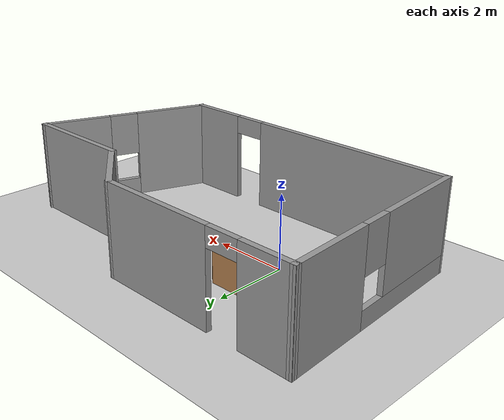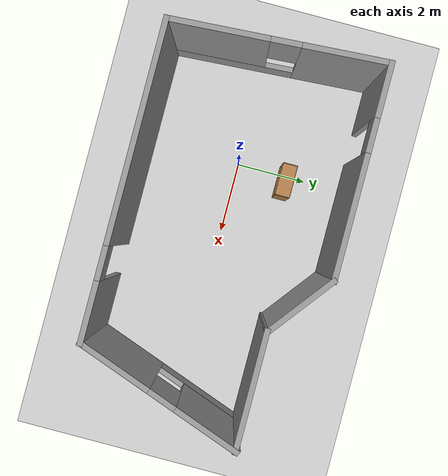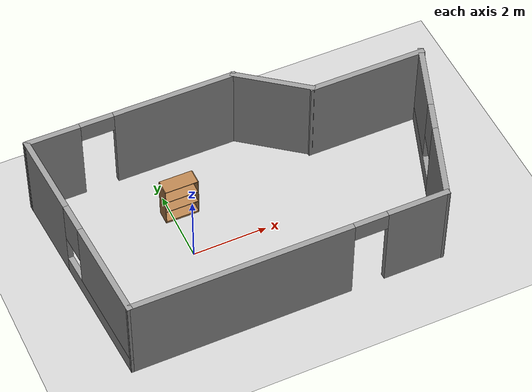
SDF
<sdf version="1.7">
 <world name="default">
  <model name="ground_plane">
   <static>1</static>
   <link name="link">
    <collision name="collision">
     <geometry><plane><normal>0 0 1</normal><size>100 100</size></plane></geometry>
     <surface>
      <contact><collide_bitmask>65535</collide_bitmask></contact>
      <friction><ode><mu>100</mu><mu2>50</mu2></ode></friction>
     </surface>
    </collision>
    <visual name="visual">
     <cast_shadows>0</cast_shadows>
     <geometry><plane><normal>0 0 1</normal><size>100 100</size></plane></geometry>
     <material>
      <script><uri>file://media/materials/scripts/gazebo.material</uri><name>Gazebo/Grey</name></script>
     </material>
    </visual>
   </link>
  </model>
  <model name="bookshelf">
   <static>1</static>
   <link name="link">
    <inertial><mass>1</mass></inertial>
    <collision name="back">
     <pose>0 0.005 0.6 0 -0 0</pose>
     <geometry><box><size>0.9 0.01 1.2</size></box></geometry>
    </collision>
    <visual name="visual1">
     <pose>0 0.005 0.6 0 -0 0</pose>
     <geometry><box><size>0.9 0.01 1.2</size></box></geometry>
     <material>
      <script><uri>file://media/materials/scripts/gazebo.material</uri><name>Gazebo/Wood</name></script>
     </material>
    </visual>
    <collision name="left_side">
     <pose>0.45 -0.195 0.6 0 -0 0</pose>
     <geometry><box><size>0.02 0.4 1.2</size></box></geometry>
    </collision>
    <visual name="visual2">
     <pose>0.45 -0.195 0.6 0 -0 0</pose>
     <geometry><box><size>0.02 0.4 1.2</size></box></geometry>
     <material>
      <script><uri>file://media/materials/scripts/gazebo.material</uri><name>Gazebo/Wood</name></script>
     </material>
    </visual>
    <collision name="right_side">
     <pose>-0.45 -0.195 0.6 0 -0 0</pose>
     <geometry><box><size>0.02 0.4 1.2</size></box></geometry>
    </collision>
    <visual name="visual3">
     <pose>-0.45 -0.195 0.6 0 -0 0</pose>
     <geometry><box><size>0.02 0.4 1.2</size></box></geometry>
     <material>
      <script><uri>file://media/materials/scripts/gazebo.material</uri><name>Gazebo/Wood</name></script>
     </material>
    </visual>
    <collision name="bottom">
     <pose>0 -0.195 0.03 0 -0 0</pose>
     <geometry><box><size>0.88 0.4 0.06</size></box></geometry>
    </collision>
    <visual name="visual4">
     <pose>0 -0.195 0.03 0 -0 0</pose>
     <geometry><box><size>0.88 0.4 0.06</size></box></geometry>
     <material>
      <script><uri>file://media/materials/scripts/gazebo.material</uri><name>Gazebo/Wood</name></script>
     </material>
    </visual>
    <collision name="top">
     <pose>0 -0.195 1.19 0 -0 0</pose>
     <geometry><box><size>0.88 0.4 0.02</size></box></geometry>
    </collision>
    <visual name="visual5">
     <pose>0 -0.195 1.19 0 -0 0</pose>
     <geometry><box><size>0.88 0.4 0.02</size></box></geometry>
     <material>
      <script><uri>file://media/materials/scripts/gazebo.material</uri><name>Gazebo/Wood</name></script>
     </material>
    </visual>
    <collision name="low_shelf">
     <pose>0 -0.195 0.43 0 -0 0</pose>
     <geometry><box><size>0.88 0.4 0.02</size></box></geometry>
    </collision>
    <visual name="visual6">
     <pose>0 -0.195 0.43 0 -0 0</pose>
     <geometry><box><size>0.88 0.4 0.02</size></box></geometry>
     <material>
      <script><uri>file://media/materials/scripts/gazebo.material</uri><name>Gazebo/Wood</name></script>
     </material>
    </visual>
    <collision name="high_shelf">
     <pose>0 -0.195 0.8 0 -0 0</pose>
     <geometry><box><size>0.88 0.4 0.02</size></box></geometry>
    </collision>
    <visual name="visual7">
     <pose>0 -0.195 0.8 0 -0 0</pose>
     <geometry><box><size>0.88 0.4 0.02</size></box></geometry>
     <material>
      <script><uri>file://media/materials/scripts/gazebo.material</uri><name>Gazebo/Wood</name></script>
     </material>
    </visual>
   </link>
   <pose>0.221585 1.59801 0 0 -0 0</pose>
  </model>
  <model name="test_world">
   <pose>2.06967 0.244524 0 0 -0 0</pose>
   <link name="Wall_2">
    <pose>-0.644671 -2.85452 0 0 -0 0</pose>
    <visual name="Wall_2_Visual_0">
     <pose>-1.29073 0 1.25 0 -0 0</pose>
     <geometry><box><size>5.91854 0.15 2.5</size></box></geometry>
     <material>
      <script><uri>file://media/materials/scripts/gazebo.material</uri><name>Gazebo/Grey</name></script>
      <ambient>1 1 1 1</ambient>
     </material>
     <meta><layer>0</layer></meta>
    </visual>
    <collision name="Wall_2_Collision_0">
     <geometry><box><size>5.91854 0.15 2.5</size></box></geometry>
     <pose>-1.29073 0 1.25 0 -0 0</pose>
    </collision>
    <visual name="Wall_2_Visual_1">
     <pose>3.40927 0 1.25 0 -0 0</pose>
     <geometry><box><size>1.68146 0.15 2.5</size></box></geometry>
     <material>
      <script><uri>file://media/materials/scripts/gazebo.material</uri><name>Gazebo/Grey</name></script>
      <ambient>1 1 1 1</ambient>
     </material>
     <meta><layer>0</layer></meta>
    </visual>
    <collision name="Wall_2_Collision_1">
     <geometry><box><size>1.68146 0.15 2.5</size></box></geometry>
     <pose>3.40927 0 1.25 0 -0 0</pose>
    </collision>
    <visual name="Wall_2_Visual_2">
     <pose>2.11854 0 2.25 0 -0 0</pose>
     <geometry><box><size>0.9 0.15 0.5</size></box></geometry>
     <material>
      <script><uri>file://media/materials/scripts/gazebo.material</uri><name>Gazebo/Grey</name></script>
      <ambient>1 1 1 1</ambient>
     </material>
     <meta><layer>0</layer></meta>
    </visual>
    <collision name="Wall_2_Collision_2">
     <geometry><box><size>0.9 0.15 0.5</size></box></geometry>
     <pose>2.11854 0 2.25 0 -0 0</pose>
    </collision>
   </link>
   <link name="Wall_3">
    <pose>4.34164 -0.63422 0 0 -0 1.22047</pose>
    <visual name="Wall_3_Visual_0">
     <pose>-1.36792 0 1.25 0 -0 0</pose>
     <geometry><box><size>2.14193 0.15 2.5</size></box></geometry>
     <material>
      <script><uri>file://media/materials/scripts/gazebo.material</uri><name>Gazebo/Grey</name></script>
      <ambient>1 1 1 1</ambient>
     </material>
     <meta><layer>0</layer></meta>
    </visual>
    <collision name="Wall_3_Collision_0">
     <geometry><box><size>2.14193 0.15 2.5</size></box></geometry>
     <pose>-1.36792 0 1.25 0 -0 0</pose>
    </collision>
    <visual name="Wall_3_Visual_1">
     <pose>1.07097 0 0.25 0 -0 0</pose>
     <geometry><box><size>2.73584 0.15 0.5</size></box></geometry>
     <material>
      <script><uri>file://media/materials/scripts/gazebo.material</uri><name>Gazebo/Grey</name></script>
      <ambient>1 1 1 1</ambient>
     </material>
     <meta><layer>0</layer></meta>
    </visual>
    <collision name="Wall_3_Collision_1">
     <geometry><box><size>2.73584 0.15 0.5</size></box></geometry>
     <pose>1.07097 0 0.25 0 -0 0</pose>
    </collision>
    <visual name="Wall_3_Visual_2">
     <pose>1.47097 0 1.5 0 -0 0</pose>
     <geometry><box><size>1.93584 0.15 2</size></box></geometry>
     <material>
      <script><uri>file://media/materials/scripts/gazebo.material</uri><name>Gazebo/Grey</name></script>
      <ambient>1 1 1 1</ambient>
     </material>
     <meta><layer>0</layer></meta>
    </visual>
    <collision name="Wall_3_Collision_2">
     <geometry><box><size>1.93584 0.15 2</size></box></geometry>
     <pose>1.47097 0 1.5 0 -0 0</pose>
    </collision>
    <visual name="Wall_3_Visual_3">
     <pose>0.103044 0 1.9 0 -0 0</pose>
     <geometry><box><size>0.8 0.15 1.2</size></box></geometry>
     <material>
      <script><uri>file://media/materials/scripts/gazebo.material</uri><name>Gazebo/Grey</name></script>
      <ambient>1 1 1 1</ambient>
     </material>
     <meta><layer>0</layer></meta>
    </visual>
    <collision name="Wall_3_Collision_3">
     <geometry><box><size>0.8 0.15 1.2</size></box></geometry>
     <pose>0.103044 0 1.9 0 -0 0</pose>
    </collision>
   </link>
   <link name="Wall_4">
    <collision name="Wall_4_Collision">
     <geometry><box><size>3.25 0.15 2.5</size></box></geometry>
     <pose>0 0 1.25 0 -0 0</pose>
    </collision>
    <visual name="Wall_4_Visual">
     <pose>0 0 1.25 0 -0 0</pose>
     <geometry><box><size>3.25 0.15 2.5</size></box></geometry>
     <material>
      <script><uri>file://media/materials/scripts/gazebo.material</uri><name>Gazebo/Grey</name></script>
      <ambient>1 1 1 1</ambient>
     </material>
     <meta><layer>0</layer></meta>
    </visual>
    <pose>3.60294 1.55948 0 0 -0 3.14159</pose>
   </link>
   <link name="Wall_5">
    <collision name="Wall_5_Collision">
     <geometry><box><size>2.204 0.15 2.5</size></box></geometry>
     <pose>0 0 1.25 0 -0 0</pose>
    </collision>
    <visual name="Wall_5_Visual">
     <pose>0 0 1.25 0 -0 0</pose>
     <geometry><box><size>2.204 0.15 2.5</size></box></geometry>
     <material>
      <script><uri>file://media/materials/scripts/gazebo.material</uri><name>Gazebo/Grey</name></script>
      <ambient>1 1 1 1</ambient>
     </material>
     <meta><layer>0</layer></meta>
    </visual>
    <pose>1.24164 2.21578 0 0 -0 2.48156</pose>
   </link>
   <link name="Wall_6">
    <pose>-2.36967 2.84548 0 0 -0 3.14159</pose>
    <visual name="Wall_6_Visual_0">
     <pose>-1.19025 0 1.25 0 -0 0</pose>
     <geometry><box><size>3.36949 0.15 2.5</size></box></geometry>
     <material>
      <script><uri>file://media/materials/scripts/gazebo.material</uri><name>Gazebo/Grey</name></script>
      <ambient>1 1 1 1</ambient>
     </material>
     <meta><layer>0</layer></meta>
    </visual>
    <collision name="Wall_6_Collision_0">
     <geometry><box><size>3.36949 0.15 2.5</size></box></geometry>
     <pose>-1.19025 0 1.25 0 -0 0</pose>
    </collision>
    <visual name="Wall_6_Visual_1">
     <pose>2.13475 0 1.25 0 -0 0</pose>
     <geometry><box><size>1.48051 0.15 2.5</size></box></geometry>
     <material>
      <script><uri>file://media/materials/scripts/gazebo.material</uri><name>Gazebo/Grey</name></script>
      <ambient>1 1 1 1</ambient>
     </material>
     <meta><layer>0</layer></meta>
    </visual>
    <collision name="Wall_6_Collision_1">
     <geometry><box><size>1.48051 0.15 2.5</size></box></geometry>
     <pose>2.13475 0 1.25 0 -0 0</pose>
    </collision>
    <visual name="Wall_6_Visual_2">
     <pose>0.944494 0 2.25 0 -0 0</pose>
     <geometry><box><size>0.9 0.15 0.5</size></box></geometry>
     <material>
      <script><uri>file://media/materials/scripts/gazebo.material</uri><name>Gazebo/Grey</name></script>
      <ambient>1 1 1 1</ambient>
     </material>
     <meta><layer>0</layer></meta>
    </visual>
    <collision name="Wall_6_Collision_2">
     <geometry><box><size>0.9 0.15 0.5</size></box></geometry>
     <pose>0.944494 0 2.25 0 -0 0</pose>
    </collision>
   </link>
   <link name="Wall_7">
    <pose>-4.99467 -0.004524 0 0 -0 -1.50947</pose>
    <visual name="Wall_7_Visual_0">
     <pose>-1.759 0 1.25 0 -0 0</pose>
     <geometry><box><size>2.34273 0.15 2.5</size></box></geometry>
     <material>
      <script><uri>file://media/materials/scripts/gazebo.material</uri><name>Gazebo/Grey</name></script>
      <ambient>1 1 1 1</ambient>
     </material>
     <meta><layer>0</layer></meta>
    </visual>
    <collision name="Wall_7_Collision_0">
     <geometry><box><size>2.34273 0.15 2.5</size></box></geometry>
     <pose>-1.759 0 1.25 0 -0 0</pose>
    </collision>
    <visual name="Wall_7_Visual_1">
     <pose>1.17136 0 0.25 0 -0 0</pose>
     <geometry><box><size>3.51801 0.15 0.5</size></box></geometry>
     <material>
      <script><uri>file://media/materials/scripts/gazebo.material</uri><name>Gazebo/Grey</name></script>
      <ambient>1 1 1 1</ambient>
     </material>
     <meta><layer>0</layer></meta>
    </visual>
    <collision name="Wall_7_Collision_1">
     <geometry><box><size>3.51801 0.15 0.5</size></box></geometry>
     <pose>1.17136 0 0.25 0 -0 0</pose>
    </collision>
    <visual name="Wall_7_Visual_2">
     <pose>1.57136 0 1.5 0 -0 0</pose>
     <geometry><box><size>2.71801 0.15 2</size></box></geometry>
     <material>
      <script><uri>file://media/materials/scripts/gazebo.material</uri><name>Gazebo/Grey</name></script>
      <ambient>1 1 1 1</ambient>
     </material>
     <meta><layer>0</layer></meta>
    </visual>
    <collision name="Wall_7_Collision_2">
     <geometry><box><size>2.71801 0.15 2</size></box></geometry>
     <pose>1.57136 0 1.5 0 -0 0</pose>
    </collision>
    <visual name="Wall_7_Visual_3">
     <pose>-0.187642 0 1.9 0 -0 0</pose>
     <geometry><box><size>0.8 0.15 1.2</size></box></geometry>
     <material>
      <script><uri>file://media/materials/scripts/gazebo.material</uri><name>Gazebo/Grey</name></script>
      <ambient>1 1 1 1</ambient>
     </material>
     <meta><layer>0</layer></meta>
    </visual>
    <collision name="Wall_7_Collision_3">
     <geometry><box><size>0.8 0.15 1.2</size></box></geometry>
     <pose>-0.187642 0 1.9 0 -0 0</pose>
    </collision>
   </link>
   <static>1</static>
  </model>
 </world>
</sdf>
